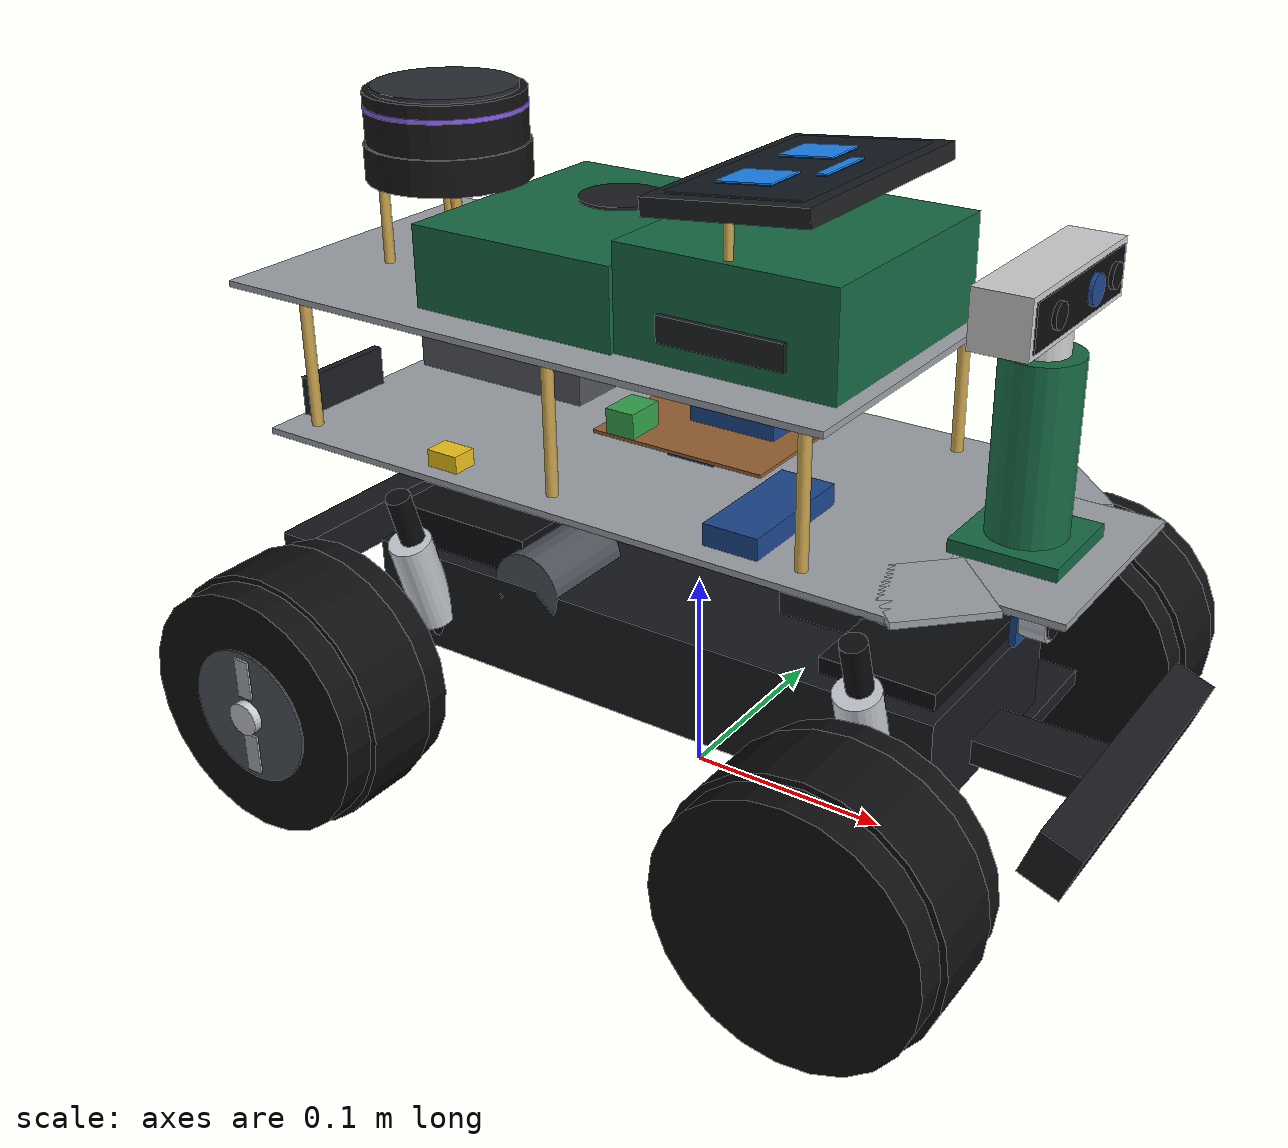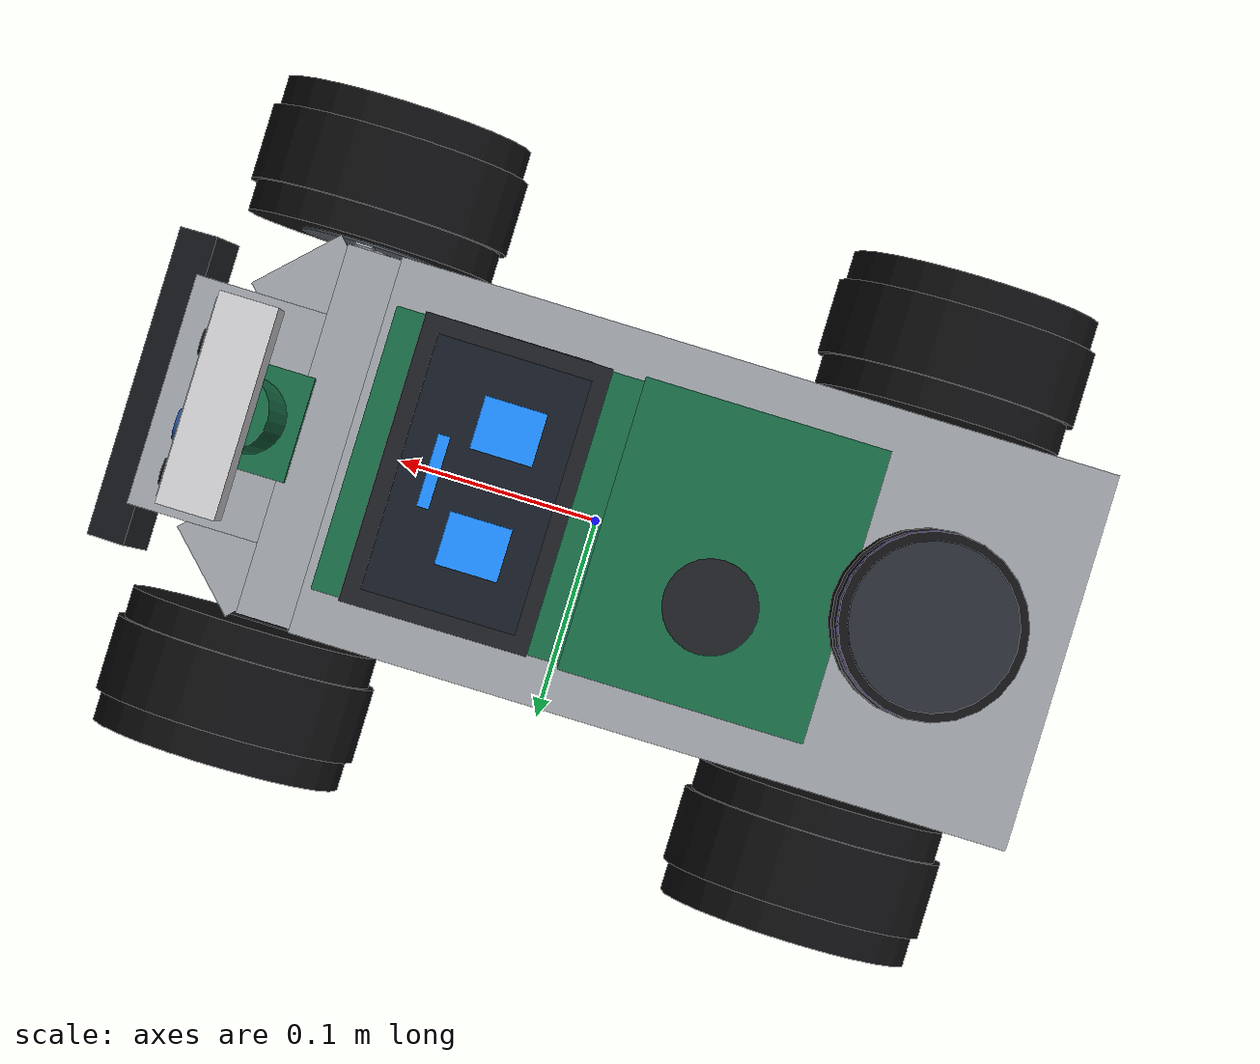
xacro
<?xml version="1.0"?>
<robot name="a2r_bot" xmlns:xacro="http://www.ros.org/wiki/xacro">

  <!-- ══ ARGUMENTS ═══════════════════════════════════════════════════════ -->
  <xacro:arg name="styling"     default="true"/>
  <xacro:arg name="use_meshes"  default="false"/>
  <xacro:arg name="lidar"       default="rplidar"/>
  <xacro:arg name="use_gazebo"  default="false"/>

  <xacro:property name="styling"    value="$(arg styling)"/>
  <xacro:property name="use_meshes" value="$(arg use_meshes)"/>

  <!-- ══ MODULES ═════════════════════════════════════════════════════════ -->
  <xacro:include filename="$(find a2r_bot_description)/urdf/common.xacro"/>
  <xacro:include filename="$(find a2r_bot_description)/urdf/chassis.xacro"/>
  <xacro:include filename="$(find a2r_bot_description)/urdf/wheels.xacro"/>
  <xacro:include filename="$(find a2r_bot_description)/urdf/electronics.xacro"/>
  <xacro:include filename="$(find a2r_bot_description)/urdf/sensors.xacro"/>

  <!-- ══ ASSEMBLY ════════════════════════════════════════════════════════ -->
  <xacro:a2r_chassis      styling="${styling}"/>
  <xacro:a2r_running_gear styling="${styling}"/>
  <xacro:a2r_electronics  styling="${styling}"/>
  <xacro:a2r_sensors      parent_deck_top="top_deck"
                          parent_deck_base="base_deck"
                          styling="${styling}"/>

  <xacro:if value="${use_meshes}">
    <link name="body_shell">
      <visual>
        <origin xyz="0 0 0" rpy="0 0 0"/>
        <geometry>
          <mesh filename="package://a2r_bot_description/meshes/body.dae" scale="1 1 1"/>
        </geometry>
      </visual>
      <xacro:null_inertial/>
    </link>
    <joint name="body_shell_joint" type="fixed">
      <parent link="base_link"/>
      <child  link="body_shell"/>
      <origin xyz="0 0 0.03"/>
    </joint>
  </xacro:if>

  <!-- ══ OPTIONAL GAZEBO / ros2_control ══════════════════════════════════ -->
  <xacro:if value="$(arg use_gazebo)">
    <xacro:include filename="$(find a2r_bot_description)/urdf/a2r_bot.gazebo.xacro"/>
    <xacro:a2r_gazebo/>
  </xacro:if>

</robot>

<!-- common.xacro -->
<robot xmlns:xacro="http://www.ros.org/wiki/xacro">

  <!-- MEASURED Sep 2026 (see docs/KINEMATICS.md). 400 mm tyre-to-tyre minus one
       120 mm tyre diameter puts the axles 280 mm apart. -->
  <xacro:property name="wheelbase"        value="0.280"/>   <!-- front↔rear axle -->
  <xacro:property name="track"            value="0.250"/>   <!-- left↔right wheel -->
  <xacro:property name="wheel_radius"     value="0.060"/>   <!-- Ø 120 mm measured -->
  <xacro:property name="wheel_width"      value="0.065"/>
  <xacro:property name="rim_radius"       value="0.033"/>
  <xacro:property name="chassis_len"      value="0.400"/>
  <xacro:property name="chassis_wid"      value="0.310"/>
  <xacro:property name="chassis_hgt"      value="0.060"/>
  <xacro:property name="chassis_z"        value="0.090"/>   <!-- base_link above ground (axle 0.060 + 0.030) -->
  <xacro:property name="max_steer_rad"    value="0.5236"/>

  <!-- Derived -->
  <xacro:property name="half_wb"          value="${wheelbase/2}"/>
  <xacro:property name="half_track"       value="${track/2}"/>
  <xacro:property name="wheel_z"          value="${wheel_radius - chassis_z}"/>

  <xacro:property name="deck_thk"          value="0.003"/>
  <xacro:property name="lower_deck_top_gz" value="0.165"/>
  <xacro:property name="lower_deck_rear_x" value="-0.185"/>
  <xacro:property name="lower_deck_front_x" value="0.140"/>  <!-- nose starts here -->
  <xacro:property name="lower_deck_nose_x" value="0.200"/>   <!-- nose tip         -->
  <xacro:property name="lower_deck_wid"    value="0.170"/>
  <xacro:property name="deck_gap"          value="0.068"/>   <!-- lower→upper, brass -->
  <xacro:property name="upper_deck_rear_x" value="-0.205"/>
  <xacro:property name="upper_deck_front_x" value="0.110"/>
  <xacro:property name="upper_deck_wid"    value="0.165"/>
  <xacro:property name="standoff_r"        value="0.0028"/>

  <!-- Derived (do not edit) -->
  <xacro:property name="base_deck_z"  value="${lower_deck_top_gz - deck_thk/2 - chassis_z}"/>
  <xacro:property name="top_deck_z"   value="${deck_gap}"/>
  <xacro:property name="lower_len"    value="${lower_deck_front_x - lower_deck_rear_x}"/>
  <xacro:property name="lower_cx"     value="${(lower_deck_front_x + lower_deck_rear_x)/2}"/>
  <xacro:property name="upper_len"    value="${upper_deck_front_x - upper_deck_rear_x}"/>
  <xacro:property name="upper_cx"     value="${(upper_deck_front_x + upper_deck_rear_x)/2}"/>
  <!-- kept for anything that still reads the old names -->
  <xacro:property name="deck_len"     value="${upper_len}"/>
  <xacro:property name="deck_wid"     value="${upper_deck_wid}"/>
  <xacro:property name="standoff_h"   value="${deck_gap - deck_thk}"/>

  <xacro:property name="lidar_x"          value="-0.140"/>  <!-- base_link frame -->
  <xacro:property name="lidar_y"          value="0.001"/>   <!-- sheet: 55 mm right vs 53 mm left gap -->
  <xacro:property name="lidar_yaw"        value="0.000"/>
  <!-- RPLIDAR A2M12 (Slamtec, driven by sllidar_ros2): Ø76 mm, ~41 mm tall,
       fixed base + spinning head with the light ring -->
  <xacro:property name="lidar_radius"     value="0.038"/>
  <xacro:property name="lidar_base_h"     value="0.017"/>
  <xacro:property name="lidar_head_h"     value="0.024"/>
  <xacro:property name="lidar_height"     value="${lidar_base_h + lidar_head_h}"/>
  <xacro:property name="lidar_standoff_h" value="0.040"/>   <!-- 4 × brass -->
  <!-- lidar_link sits on the scan plane = middle of the spinning head -->
  <xacro:property name="lidar_optical_z"  value="${lidar_base_h + lidar_head_h/2}"/>

  <xacro:property name="imu_x"            value="0.000"/>   <!-- GY-91, lower deck -->
  <xacro:property name="imu_y"            value="0.000"/>

  <!-- RealSense D435 on the green printed pillar at the nose of the lower deck -->
  <xacro:property name="cam_x"            value="0.160"/>
  <xacro:property name="cam_y"            value="0.000"/>
  <xacro:property name="cam_pillar_h"     value="0.078"/>
  <xacro:property name="cam_pillar_r"     value="0.0175"/>
  <xacro:property name="cam_clamp_h"      value="0.012"/>

  <xacro:property name="us_front_x"       value="0.180"/>
  <xacro:property name="us_rear_x"        value="-0.205"/>
  <xacro:property name="us_z"             value="0.050"/>   <!-- rel. base_link   -->
  <xacro:property name="us_radius"        value="0.008"/>
  <xacro:property name="us_length"        value="0.012"/>

  <material name="body_black">   <color rgba="0.086 0.094 0.110 1.0"/></material>
  <material name="body_shadow">  <color rgba="0.043 0.047 0.059 1.0"/></material>
  <material name="body_highlight"><color rgba="0.161 0.176 0.204 1.0"/></material>
  <material name="glass">        <color rgba="0.118 0.153 0.196 0.72"/></material>
  <material name="chrome">       <color rgba="0.780 0.800 0.827 1.0"/></material>
  <material name="gunmetal">     <color rgba="0.298 0.322 0.353 1.0"/></material>
  <material name="tyre">         <color rgba="0.055 0.055 0.063 1.0"/></material>
  <material name="rim_silver">   <color rgba="0.663 0.686 0.714 1.0"/></material>
  <material name="caliper_red">  <color rgba="0.769 0.114 0.137 1.0"/></material>
  <material name="light_white">  <color rgba="0.925 0.961 1.000 1.0"/></material>
  <material name="light_red">    <color rgba="0.937 0.137 0.169 1.0"/></material>
  <material name="light_amber">  <color rgba="1.000 0.596 0.102 1.0"/></material>
  <material name="pcb_green">    <color rgba="0.078 0.396 0.267 1.0"/></material>
  <material name="pcb_blue">     <color rgba="0.106 0.278 0.561 1.0"/></material>
  <material name="pcb_black">    <color rgba="0.110 0.118 0.133 1.0"/></material>
  <material name="lipo_orange">  <color rgba="0.878 0.400 0.086 1.0"/></material>
  <material name="screen_cyan">  <color rgba="0.118 0.549 1.000 1.0"/></material>
  <material name="sensor_grey">  <color rgba="0.451 0.471 0.502 1.0"/></material>
  <material name="lidar_blue">   <color rgba="0.161 0.353 0.706 1.0"/></material>
  <material name="aluminium">    <color rgba="0.620 0.640 0.660 1.0"/></material>
  <material name="brass">        <color rgba="0.800 0.650 0.300 1.0"/></material>
  <material name="print_green">  <color rgba="0.090 0.420 0.270 1.0"/></material>
  <material name="rs_silver">    <color rgba="0.820 0.820 0.830 1.0"/></material>
  <material name="lidar_black">  <color rgba="0.070 0.070 0.080 1.0"/></material>
  <material name="lidar_glow">   <color rgba="0.520 0.360 0.950 1.0"/></material>
  <material name="pcb_brown">    <color rgba="0.600 0.380 0.200 1.0"/></material>
  <material name="terminal_green"><color rgba="0.200 0.650 0.300 1.0"/></material>
  <material name="battery_grey"> <color rgba="0.330 0.340 0.360 1.0"/></material>
  <material name="xt60_yellow">  <color rgba="0.950 0.780 0.100 1.0"/></material>
  <material name="copper">       <color rgba="0.722 0.451 0.200 1.0"/></material>

  <xacro:macro name="null_inertial">
    <inertial>
      <mass value="0.001"/>
      <inertia ixx="1e-7" ixy="0" ixz="0" iyy="1e-7" iyz="0" izz="1e-7"/>
    </inertial>
  </xacro:macro>

  <xacro:macro name="box_inertial" params="mass x y z *origin">
    <inertial>
      <xacro:insert_block name="origin"/>
      <mass value="${mass}"/>
      <inertia
        ixx="${mass*(y*y + z*z)/12.0}" ixy="0.0" ixz="0.0"
        iyy="${mass*(x*x + z*z)/12.0}" iyz="0.0"
        izz="${mass*(x*x + y*y)/12.0}"/>
    </inertial>
  </xacro:macro>

  <xacro:macro name="cylinder_inertial" params="mass radius length *origin">
    <inertial>
      <xacro:insert_block name="origin"/>
      <mass value="${mass}"/>
      <inertia
        ixx="${mass*(3.0*radius*radius + length*length)/12.0}" ixy="0.0" ixz="0.0"
        iyy="${mass*(3.0*radius*radius + length*length)/12.0}" iyz="0.0"
        izz="${mass*radius*radius/2.0}"/>
    </inertial>
  </xacro:macro>

  <!-- Decorative box: visual only, no collision, negligible inertia.
       Used for the ~40 styling panels so they cost the planner nothing.     -->
  <xacro:macro name="deco_box" params="name parent x:=0 y:=0 z:=0 roll:=0 pitch:=0 yaw:=0
                                       sx sy sz material">
    <link name="${name}">
      <visual>
        <geometry><box size="${sx} ${sy} ${sz}"/></geometry>
        <material name="${material}"/>
      </visual>
      <xacro:null_inertial/>
    </link>
    <joint name="${name}_joint" type="fixed">
      <parent link="${parent}"/>
      <child  link="${name}"/>
      <origin xyz="${x} ${y} ${z}" rpy="${roll} ${pitch} ${yaw}"/>
    </joint>
  </xacro:macro>

  <xacro:macro name="deco_cyl" params="name parent x:=0 y:=0 z:=0 roll:=0 pitch:=0 yaw:=0
                                       radius length material">
    <link name="${name}">
      <visual>
        <geometry><cylinder radius="${radius}" length="${length}"/></geometry>
        <material name="${material}"/>
      </visual>
      <xacro:null_inertial/>
    </link>
    <joint name="${name}_joint" type="fixed">
      <parent link="${parent}"/>
      <child  link="${name}"/>
      <origin xyz="${x} ${y} ${z}" rpy="${roll} ${pitch} ${yaw}"/>
    </joint>
  </xacro:macro>

</robot>

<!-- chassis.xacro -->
<robot xmlns:xacro="http://www.ros.org/wiki/xacro">

  <xacro:macro name="a2r_chassis" params="styling:=true">

    <link name="base_footprint"/>

    <joint name="base_footprint_joint" type="fixed">
      <parent link="base_footprint"/>
      <child  link="base_link"/>
      <origin xyz="0 0 ${chassis_z}" rpy="0 0 0"/>
    </joint>

    <!-- ══ base_link: visual = RC tub, collision = planner footprint ═════ -->
    <link name="base_link">
      <visual>
        <origin xyz="0 0 -0.012"/>
        <geometry><box size="0.300 0.110 0.050"/></geometry>
        <material name="body_black"/>
      </visual>
      <collision>
        <geometry><box size="${chassis_len} ${chassis_wid} ${chassis_hgt}"/></geometry>
      </collision>
      <xacro:box_inertial mass="2.4" x="${chassis_len}" y="${chassis_wid}" z="${chassis_hgt}">
        <origin xyz="0 0 0" rpy="0 0 0"/>
      </xacro:box_inertial>
    </link>

    <xacro:if value="${styling}">

      <!-- ── Rear gearbox + motor (RWD) ──────────────────────────────── -->
      <xacro:deco_box name="gearbox" parent="base_link" x="-0.105" y="0" z="0.002"
                      sx="0.075" sy="0.095" sz="0.060" material="body_shadow"/>
      <xacro:deco_cyl name="motor" parent="base_link" x="-0.060" y="-0.030" z="0.012"
                      roll="1.5708" radius="0.018" length="0.050" material="gunmetal"/>

      <!-- ── Front bulkhead + steering servo ──────────────────────────── -->
      <xacro:deco_box name="front_bulkhead" parent="base_link" x="0.118" y="0" z="-0.004"
                      sx="0.055" sy="0.090" sz="0.050" material="body_shadow"/>
      <xacro:deco_box name="steer_servo" parent="base_link" x="0.070" y="0" z="0.018"
                      sx="0.040" sy="0.020" sz="0.038" material="pcb_black"/>

      <!-- ── Bumpers ──────────────────────────────────────────────────── -->
      <xacro:deco_box name="front_bumper" parent="base_link" x="0.212" y="0" z="-0.018"
                      pitch="0.35" sx="0.020" sy="0.150" sz="0.024" material="body_black"/>
      <xacro:deco_box name="front_bumper_arm" parent="base_link" x="0.175" y="0" z="-0.022"
                      sx="0.060" sy="0.030" sz="0.012" material="body_black"/>
      <xacro:deco_box name="rear_bumper" parent="base_link" x="-0.205" y="0" z="-0.010"
                      sx="0.018" sy="0.120" sz="0.022" material="body_black"/>

      <!-- ── Suspension arms (lower wishbones) ────────────────────────── -->
      <xacro:deco_box name="arm_fl" parent="base_link" x="${ half_wb}" y="0.068"  z="${wheel_z - 0.008}"
                      sx="0.030" sy="0.070" sz="0.008" material="body_black"/>
      <xacro:deco_box name="arm_fr" parent="base_link" x="${ half_wb}" y="-0.068" z="${wheel_z - 0.008}"
                      sx="0.030" sy="0.070" sz="0.008" material="body_black"/>
      <xacro:deco_box name="arm_rl" parent="base_link" x="${-half_wb}" y="0.068"  z="${wheel_z - 0.008}"
                      sx="0.030" sy="0.070" sz="0.008" material="body_black"/>
      <xacro:deco_box name="arm_rr" parent="base_link" x="${-half_wb}" y="-0.068" z="${wheel_z - 0.008}"
                      sx="0.030" sy="0.070" sz="0.008" material="body_black"/>

      <!-- ── Coil-over shocks: chrome spring over a black body, raked out ─ -->
      <xacro:macro name="a2r_shock" params="name x y lean">
        <xacro:deco_cyl name="${name}_body" parent="base_link" x="${x}" y="${y}" z="0.012"
                        roll="${lean}" radius="0.006" length="0.085" material="body_shadow"/>
        <xacro:deco_cyl name="${name}_spring" parent="base_link" x="${x}" y="${y}" z="0.004"
                        roll="${lean}" radius="0.0105" length="0.048" material="chrome"/>
      </xacro:macro>
      <xacro:a2r_shock name="shock_fl" x="${ half_wb - 0.018}" y="0.062"  lean="-0.30"/>
      <xacro:a2r_shock name="shock_fr" x="${ half_wb - 0.018}" y="-0.062" lean="0.30"/>
      <xacro:a2r_shock name="shock_rl" x="${-half_wb + 0.022}" y="0.062"  lean="-0.30"/>
      <xacro:a2r_shock name="shock_rr" x="${-half_wb + 0.022}" y="-0.062" lean="0.30"/>

      <!-- ── Posts that carry the lower deck on the tub ───────────────── -->
      <xacro:deco_cyl name="deck_post_f" parent="base_link" x="0.100" y="0" z="0.045"
                      radius="0.006" length="0.050" material="body_shadow"/>
      <xacro:deco_cyl name="deck_post_r" parent="base_link" x="-0.150" y="0" z="0.050"
                      radius="0.006" length="0.040" material="body_shadow"/>

    </xacro:if>
  </xacro:macro>

</robot>

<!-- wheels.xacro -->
<robot xmlns:xacro="http://www.ros.org/wiki/xacro">

  <!-- ══ One wheel: tyre + tread + dish rim + hub ══════════════════════ -->
  <xacro:macro name="a2r_wheel" params="prefix parent x y styling:=true">

    <link name="${prefix}_wheel">
      <!-- Tyre -->
      <visual>
        <origin rpy="1.5708 0 0"/>
        <geometry><cylinder radius="${wheel_radius}" length="${wheel_width}"/></geometry>
        <material name="tyre"/>
      </visual>
      <collision>
        <origin rpy="1.5708 0 0"/>
        <geometry><cylinder radius="${wheel_radius}" length="${wheel_width}"/></geometry>
      </collision>
      <xacro:cylinder_inertial mass="0.18" radius="${wheel_radius}" length="${wheel_width}">
        <origin rpy="1.5708 0 0"/>
      </xacro:cylinder_inertial>
    </link>

    <joint name="${prefix}_wheel_joint" type="continuous">
      <parent link="${parent}"/>
      <child  link="${prefix}_wheel"/>
      <origin xyz="${x} ${y} ${0 if parent != 'base_link' else wheel_z}"/>
      <axis xyz="0 1 0"/>
      <dynamics damping="0.02" friction="0.01"/>
    </joint>

    <xacro:if value="${styling}">
      <!-- Chunky knobbly monster-truck tyre on a dark dish rim. -->
      <xacro:property name="side" value="${1 if y >= 0 else -1}"/>

      <!-- Tread band: slightly bigger radius, narrower, reads as lugs -->
      <xacro:deco_cyl name="${prefix}_tread" parent="${prefix}_wheel"
                      x="0" y="0" z="0" roll="1.5708"
                      radius="${wheel_radius + 0.003}" length="${wheel_width*0.55}" material="tyre"/>

      <!-- Dish rim, outboard face -->
      <xacro:deco_cyl name="${prefix}_rim" parent="${prefix}_wheel"
                      x="0" y="${side*(wheel_width/2 - 0.012)}" z="0" roll="1.5708"
                      radius="${rim_radius}" length="0.026" material="gunmetal"/>

      <!-- Two light marks on the rim: they spin with the wheel, the
           cheapest cue in RViz that the drive channel is alive. -->
      <xacro:deco_box name="${prefix}_rim_mark_a" parent="${prefix}_wheel"
                      x="0" y="${side*(wheel_width/2 + 0.001)}" z="${rim_radius*0.6}"
                      sx="0.008" sy="0.002" sz="${rim_radius*0.6}" material="rim_silver"/>
      <xacro:deco_box name="${prefix}_rim_mark_b" parent="${prefix}_wheel"
                      x="0" y="${side*(wheel_width/2 + 0.001)}" z="${-rim_radius*0.6}"
                      sx="0.008" sy="0.002" sz="${rim_radius*0.6}" material="rim_silver"/>

      <!-- Hex hub nut -->
      <xacro:deco_cyl name="${prefix}_hub" parent="${prefix}_wheel"
                      x="0" y="${side*(wheel_width/2 + 0.002)}" z="0" roll="1.5708"
                      radius="0.008" length="0.006" material="chrome"/>
    </xacro:if>
  </xacro:macro>

  <!-- ══ Steering knuckle: the revolute joint the servo actually drives ══ -->
  <xacro:macro name="a2r_knuckle" params="prefix x y">
    <link name="${prefix}_steer_link">
      <visual>
        <geometry><box size="0.016 0.020 0.030"/></geometry>
        <material name="gunmetal"/>
      </visual>
      <xacro:box_inertial mass="0.04" x="0.016" y="0.020" z="0.030">
        <origin xyz="0 0 0"/>
      </xacro:box_inertial>
    </link>

    <joint name="${prefix}_steer_joint" type="revolute">
      <parent link="base_link"/>
      <child  link="${prefix}_steer_link"/>
      <origin xyz="${x} ${y} ${wheel_z}"/>
      <axis xyz="0 0 1"/>
      <limit lower="${-max_steer_rad}" upper="${max_steer_rad}"
             effort="6.0" velocity="8.0"/>
      <dynamics damping="0.05" friction="0.02"/>
    </joint>
  </xacro:macro>

  <!-- ══ Full running gear ══════════════════════════════════════════════ -->
  <xacro:macro name="a2r_running_gear" params="styling:=true">

    <!-- FRONT: knuckle then wheel (wheel hangs off the knuckle → it steers) -->
    <xacro:a2r_knuckle prefix="front_left"  x="${ half_wb}" y="${ half_track}"/>
    <xacro:a2r_knuckle prefix="front_right" x="${ half_wb}" y="${-half_track}"/>
    <xacro:a2r_wheel prefix="front_left"  parent="front_left_steer_link"
                     x="0" y="0" styling="${styling}"/>
    <xacro:a2r_wheel prefix="front_right" parent="front_right_steer_link"
                     x="0" y="0" styling="${styling}"/>

    <!-- REAR: driven axle, no steering -->
    <xacro:a2r_wheel prefix="rear_left"  parent="base_link"
                     x="${-half_wb}" y="${ half_track}" styling="${styling}"/>
    <xacro:a2r_wheel prefix="rear_right" parent="base_link"
                     x="${-half_wb}" y="${-half_track}" styling="${styling}"/>

    <xacro:if value="${styling}">
      <!-- Rear axle tube + drive shaft, hinting at the single-motor RWD layout -->
      <xacro:deco_cyl name="rear_axle" parent="base_link"
                      x="${-half_wb}" y="0" z="${wheel_z}" roll="1.5708"
                      radius="0.006" length="${track - wheel_width}" material="chrome"/>
      <xacro:deco_cyl name="drive_shaft" parent="base_link"
                      x="${-half_wb/2}" y="0" z="${wheel_z}" pitch="1.5708"
                      radius="0.005" length="${half_wb}" material="gunmetal"/>
      <!-- Steering track rod, spanning the two knuckles -->
      <xacro:deco_cyl name="track_rod" parent="base_link"
                      x="${half_wb - 0.020}" y="0" z="${wheel_z}" roll="1.5708"
                      radius="0.004" length="${track - 0.05}" material="chrome"/>
    </xacro:if>
  </xacro:macro>

</robot>

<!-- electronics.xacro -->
<robot xmlns:xacro="http://www.ros.org/wiki/xacro">

  <xacro:macro name="a2r_electronics" params="styling:=true">

    <!-- ══ LOWER DECK ════════════════════════════════════════════════════ -->
    <link name="base_deck">
      <visual>
        <origin xyz="${lower_cx} 0 0"/>
        <geometry><box size="${lower_len} ${lower_deck_wid} ${deck_thk}"/></geometry>
        <material name="aluminium"/>
      </visual>
      <xacro:box_inertial mass="0.15" x="${lower_len}" y="${lower_deck_wid}" z="${deck_thk}">
        <origin xyz="${lower_cx} 0 0"/>
      </xacro:box_inertial>
    </link>
    <joint name="base_deck_joint" type="fixed">
      <parent link="base_link"/>
      <child  link="base_deck"/>
      <origin xyz="0 0 ${base_deck_z}"/>
    </joint>

    <!-- ══ UPPER DECK ════════════════════════════════════════════════════ -->
    <link name="top_deck">
      <visual>
        <origin xyz="${upper_cx} 0 0"/>
        <geometry><box size="${upper_len} ${upper_deck_wid} ${deck_thk}"/></geometry>
        <material name="aluminium"/>
      </visual>
      <xacro:box_inertial mass="0.13" x="${upper_len}" y="${upper_deck_wid}" z="${deck_thk}">
        <origin xyz="${upper_cx} 0 0"/>
      </xacro:box_inertial>
    </link>
    <joint name="top_deck_joint" type="fixed">
      <parent link="base_deck"/>
      <child  link="top_deck"/>
      <origin xyz="0 0 ${top_deck_z}"/>
    </joint>

    <xacro:if value="${styling}">

      <!-- ── Octagonal nose of the lower deck ─────────────────────────── -->
      <xacro:property name="nose_len" value="${lower_deck_nose_x - lower_deck_front_x}"/>
      <xacro:deco_box name="lower_nose" parent="base_deck"
                      x="${lower_deck_front_x + nose_len/2}" y="0" z="0"
                      sx="${nose_len}" sy="${lower_deck_wid*0.62}" sz="${deck_thk}" material="aluminium"/>
      <xacro:deco_box name="lower_nose_cl" parent="base_deck"
                      x="${lower_deck_front_x + 0.004}" y="${lower_deck_wid*0.33}" z="0" yaw="0.785"
                      sx="0.045" sy="0.045" sz="${deck_thk}" material="aluminium"/>
      <xacro:deco_box name="lower_nose_cr" parent="base_deck"
                      x="${lower_deck_front_x + 0.004}" y="${-lower_deck_wid*0.33}" z="0" yaw="0.785"
                      sx="0.045" sy="0.045" sz="${deck_thk}" material="aluminium"/>

      <!-- ── Brass standoffs, lower → upper deck ──────────────────────── -->
      <xacro:property name="so_z" value="${deck_gap/2}"/>
      <xacro:deco_cyl name="standoff_fl" parent="base_deck" x="0.095"  y="0.070"  z="${so_z}"
                      radius="${standoff_r}" length="${standoff_h}" material="brass"/>
      <xacro:deco_cyl name="standoff_fr" parent="base_deck" x="0.095"  y="-0.070" z="${so_z}"
                      radius="${standoff_r}" length="${standoff_h}" material="brass"/>
      <xacro:deco_cyl name="standoff_rl" parent="base_deck" x="-0.170" y="0.070"  z="${so_z}"
                      radius="${standoff_r}" length="${standoff_h}" material="brass"/>
      <xacro:deco_cyl name="standoff_rr" parent="base_deck" x="-0.170" y="-0.070" z="${so_z}"
                      radius="${standoff_r}" length="${standoff_h}" material="brass"/>
      <xacro:deco_cyl name="standoff_ml" parent="base_deck" x="-0.030" y="0.070"  z="${so_z}"
                      radius="${standoff_r}" length="${standoff_h}" material="brass"/>
      <xacro:deco_cyl name="standoff_mr" parent="base_deck" x="-0.030" y="-0.070" z="${so_z}"
                      radius="${standoff_r}" length="${standoff_h}" material="brass"/>

      <!-- ── LOWER DECK components ────────────────────────────────────── -->
      <!-- Perfboard with Arduino Nano ESP32 + screw terminals -->
      <xacro:deco_box name="perfboard" parent="base_deck" x="0.000" y="0.015" z="0.010"
                      sx="0.090" sy="0.070" sz="0.0016" material="pcb_brown"/>
      <xacro:deco_box name="arduino_nano" parent="base_deck" x="0.010" y="0.020" z="0.016"
                      sx="0.045" sy="0.018" sz="0.008" material="pcb_blue"/>
      <xacro:deco_box name="terminals_a" parent="base_deck" x="-0.030" y="0.040" z="0.017"
                      sx="0.015" sy="0.020" sz="0.012" material="terminal_green"/>
      <xacro:deco_box name="terminals_b" parent="base_deck" x="-0.030" y="-0.010" z="0.017"
                      sx="0.015" sy="0.020" sz="0.012" material="terminal_green"/>
      <!-- PCA9685 16-ch PWM -->
      <xacro:deco_box name="pca9685" parent="base_deck" x="0.065" y="-0.045" z="0.008"
                      sx="0.026" sy="0.062" sz="0.010" material="pcb_blue"/>
      <!-- Grey battery pack, rear-left, + its XT60 -->
      <xacro:deco_box name="battery_pack" parent="base_deck" x="-0.130" y="0.040" z="${deck_thk/2 + 0.020}"
                      sx="0.100" sy="0.048" sz="0.040" material="battery_grey"/>
      <xacro:deco_box name="battery_label" parent="base_deck" x="-0.130" y="0.0645" z="${deck_thk/2 + 0.020}"
                      sx="0.030" sy="0.001" sz="0.024" material="light_white"/>
      <xacro:deco_box name="xt60" parent="base_deck" x="-0.080" y="-0.078" z="0.010"
                      sx="0.016" sy="0.012" sz="0.008" material="xt60_yellow"/>

      <!-- ── UPPER DECK components ────────────────────────────────────── -->
      <!-- Rear green case (Jetson, fan grille on top) -->
      <xacro:deco_box name="jetson_case" parent="top_deck" x="-0.055" y="0" z="${deck_thk/2 + 0.019}"
                      sx="0.105" sy="0.125" sz="0.038" material="print_green"/>
      <xacro:deco_cyl name="jetson_fan" parent="top_deck" x="-0.055" y="0.020" z="${deck_thk/2 + 0.0385}"
                      radius="0.020" length="0.002" material="pcb_black"/>
      <!-- Front green case (Pi 4, ports on the side) -->
      <xacro:deco_box name="rpi_case" parent="top_deck" x="0.050" y="0" z="${deck_thk/2 + 0.024}"
                      sx="0.105" sy="0.120" sz="0.048" material="print_green"/>
      <xacro:deco_box name="rpi_ports" parent="top_deck" x="0.050" y="-0.061" z="${deck_thk/2 + 0.016}"
                      sx="0.060" sy="0.003" sz="0.012" material="pcb_black"/>
      <!-- Brass posts that lift the touchscreen off the front case -->
      <xacro:deco_cyl name="screen_post_l" parent="top_deck" x="0.050" y="0.055"  z="${deck_thk/2 + 0.056}"
                      radius="0.002" length="0.016" material="brass"/>
      <xacro:deco_cyl name="screen_post_r" parent="top_deck" x="0.050" y="-0.055" z="${deck_thk/2 + 0.056}"
                      radius="0.002" length="0.016" material="brass"/>
    </xacro:if>

    <link name="display_link">
      <visual>
        <geometry><box size="0.004 0.050 0.019"/></geometry>
        <material name="pcb_black"/>
      </visual>
      <xacro:null_inertial/>
    </link>
    <joint name="display_joint" type="fixed">
      <parent link="base_deck"/>
      <child  link="display_link"/>
      <origin xyz="${lower_deck_rear_x + 0.004} -0.040 ${deck_thk/2 + 0.010}" rpy="0 0 ${pi}"/>
    </joint>

    <link name="face_screen_link">
      <visual>
        <geometry><box size="0.008 0.120 0.078"/></geometry>
        <material name="pcb_black"/>
      </visual>
      <xacro:box_inertial mass="0.11" x="0.008" y="0.120" z="0.078">
        <origin xyz="0 0 0"/>
      </xacro:box_inertial>
    </link>
    <joint name="face_screen_joint" type="fixed">
      <parent link="top_deck"/>
      <child  link="face_screen_link"/>
      <origin xyz="0.050 0 ${deck_thk/2 + 0.068}" rpy="0 -1.671 0"/>
    </joint>

    <xacro:if value="${styling}">
      <xacro:deco_box name="face_panel" parent="face_screen_link" x="0.0045"
                      sx="0.001" sy="0.106" sz="0.064" material="glass"/>
      <xacro:deco_box name="face_eye_l" parent="face_screen_link" x="0.0052" y="0.024" z="0.006"
                      sx="0.001" sy="0.022" sz="0.026" material="screen_cyan"/>
      <xacro:deco_box name="face_eye_r" parent="face_screen_link" x="0.0052" y="-0.024" z="0.006"
                      sx="0.001" sy="0.022" sz="0.026" material="screen_cyan"/>
      <xacro:deco_box name="face_mouth" parent="face_screen_link" x="0.0052" y="0" z="-0.018"
                      sx="0.001" sy="0.030" sz="0.005" material="screen_cyan"/>
    </xacro:if>

  </xacro:macro>
</robot>

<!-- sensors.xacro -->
<robot xmlns:xacro="http://www.ros.org/wiki/xacro">

  <xacro:macro name="a2r_sensors" params="parent_deck_top parent_deck_base styling:=true">

    <link name="lidar_link">
      <visual>
        <geometry><cylinder radius="${lidar_radius}" length="${lidar_head_h}"/></geometry>
        <material name="lidar_black"/>
      </visual>
      <collision>
        <origin xyz="0 0 ${lidar_head_h/2 - lidar_height/2}"/>
        <geometry><cylinder radius="${lidar_radius}" length="${lidar_height}"/></geometry>
      </collision>
      <xacro:cylinder_inertial mass="0.19" radius="${lidar_radius}" length="${lidar_height}">
        <origin xyz="0 0 0"/>
      </xacro:cylinder_inertial>
    </link>
    <joint name="lidar_joint" type="fixed">
      <parent link="${parent_deck_top}"/>
      <child  link="lidar_link"/>
      <origin xyz="${lidar_x} ${lidar_y} ${deck_thk/2 + lidar_standoff_h + lidar_optical_z}"
              rpy="0 0 ${lidar_yaw}"/>
    </joint>

    <xacro:if value="${styling}">
      <!-- Fixed base (slightly wider), purple LED ring, cap -->
      <xacro:deco_cyl name="lidar_base" parent="lidar_link"
                      z="${-lidar_optical_z + lidar_base_h/2}"
                      radius="${lidar_radius*1.03}" length="${lidar_base_h}" material="lidar_black"/>
      <xacro:deco_cyl name="lidar_ring" parent="lidar_link" z="${lidar_head_h*0.20}"
                      radius="${lidar_radius*1.005}" length="0.002" material="lidar_glow"/>
      <xacro:deco_cyl name="lidar_cap" parent="lidar_link" z="${lidar_head_h/2 + 0.001}"
                      radius="${lidar_radius*0.90}" length="0.002" material="body_highlight"/>
      <!-- 4 brass standoffs from the upper deck up to the lidar base -->
      <xacro:property name="lso_z" value="${-lidar_optical_z - lidar_standoff_h/2}"/>
      <xacro:deco_cyl name="lidar_standoff_fl" parent="lidar_link" x="0.022"  y="0.022"  z="${lso_z}"
                      radius="0.0025" length="${lidar_standoff_h}" material="brass"/>
      <xacro:deco_cyl name="lidar_standoff_fr" parent="lidar_link" x="0.022"  y="-0.022" z="${lso_z}"
                      radius="0.0025" length="${lidar_standoff_h}" material="brass"/>
      <xacro:deco_cyl name="lidar_standoff_rl" parent="lidar_link" x="-0.022" y="0.022"  z="${lso_z}"
                      radius="0.0025" length="${lidar_standoff_h}" material="brass"/>
      <xacro:deco_cyl name="lidar_standoff_rr" parent="lidar_link" x="-0.022" y="-0.022" z="${lso_z}"
                      radius="0.0025" length="${lidar_standoff_h}" material="brass"/>
    </xacro:if>

    <link name="imu_link">
      <visual>
        <geometry><box size="0.025 0.015 0.003"/></geometry>
        <material name="pcb_blue"/>
      </visual>
      <xacro:box_inertial mass="0.005" x="0.025" y="0.015" z="0.003">
        <origin xyz="0 0 0"/>
      </xacro:box_inertial>
    </link>
    <joint name="imu_joint" type="fixed">
      <parent link="${parent_deck_base}"/>
      <child  link="imu_link"/>
      <origin xyz="${imu_x} ${imu_y} ${deck_thk/2 + 0.0015}" rpy="0 0 0"/>
    </joint>

    <xacro:property name="cam_z" value="${deck_thk/2 + 0.006 + cam_pillar_h + cam_clamp_h + 0.0125}"/>
    <link name="camera_link">
      <visual>
        <geometry><box size="0.025 0.090 0.025"/></geometry>
        <material name="rs_silver"/>
      </visual>
      <collision>
        <geometry><box size="0.025 0.090 0.025"/></geometry>
      </collision>
      <xacro:box_inertial mass="0.072" x="0.025" y="0.090" z="0.025">
        <origin xyz="0 0 0"/>
      </xacro:box_inertial>
    </link>
    <joint name="camera_joint" type="fixed">
      <parent link="${parent_deck_base}"/>
      <child  link="camera_link"/>
      <origin xyz="${cam_x} ${cam_y} ${cam_z}" rpy="0 0 0"/>
    </joint>

    <!-- REP-103 optical frame: Z forward, X right, Y down. The Jetson's
         tracker publishes owner bearings in THIS frame.                    -->
    <link name="camera_optical_frame"/>
    <joint name="camera_optical_joint" type="fixed">
      <parent link="camera_link"/>
      <child  link="camera_optical_frame"/>
      <origin xyz="0.013 0 0" rpy="${-pi/2} 0 ${-pi/2}"/>
    </joint>

    <xacro:if value="${styling}">
      <!-- Green printed pillar: square foot, round column, silver clamp -->
      <xacro:deco_box name="cam_pillar_foot" parent="${parent_deck_base}" x="${cam_x}" y="${cam_y}"
                      z="${deck_thk/2 + 0.003}" sx="0.048" sy="0.048" sz="0.006" material="print_green"/>
      <xacro:deco_cyl name="cam_pillar" parent="${parent_deck_base}" x="${cam_x}" y="${cam_y}"
                      z="${deck_thk/2 + 0.006 + cam_pillar_h/2}"
                      radius="${cam_pillar_r}" length="${cam_pillar_h}" material="print_green"/>
      <xacro:deco_cyl name="cam_clamp" parent="${parent_deck_base}" x="${cam_x}" y="${cam_y}"
                      z="${deck_thk/2 + 0.006 + cam_pillar_h + cam_clamp_h/2}"
                      radius="0.011" length="${cam_clamp_h}" material="rs_silver"/>
      <xacro:deco_box name="cam_face" parent="camera_link" x="0.0127"
                      sx="0.001" sy="0.084" sz="0.020" material="body_shadow"/>
      <xacro:deco_cyl name="cam_lens_l" parent="camera_link" x="0.0135" y="0.032"
                      pitch="1.5708" radius="0.0055" length="0.003" material="body_shadow"/>
      <xacro:deco_cyl name="cam_lens_c" parent="camera_link" x="0.0135" y="0.012"
                      pitch="1.5708" radius="0.0065" length="0.003" material="pcb_blue"/>
      <xacro:deco_cyl name="cam_lens_r" parent="camera_link" x="0.0135" y="-0.023"
                      pitch="1.5708" radius="0.0055" length="0.003" material="body_shadow"/>
    </xacro:if>

    <link name="ultrasonic_front_link">
      <visual>
        <origin xyz="-0.013 0 0"/>
        <geometry><box size="0.003 0.045 0.020"/></geometry>
        <material name="pcb_blue"/>
      </visual>
      <xacro:box_inertial mass="0.010" x="0.003" y="0.045" z="0.020">
        <origin xyz="-0.013 0 0"/>
      </xacro:box_inertial>
    </link>
    <joint name="ultrasonic_front_joint" type="fixed">
      <parent link="base_link"/>
      <child  link="ultrasonic_front_link"/>
      <origin xyz="${us_front_x} 0 ${us_z}" rpy="0 0 0"/>
    </joint>

    <!-- Rear frame only: no module fitted on the current build. -->
    <link name="ultrasonic_rear_link">
      <xacro:null_inertial/>
    </link>
    <joint name="ultrasonic_rear_joint" type="fixed">
      <parent link="base_link"/>
      <child  link="ultrasonic_rear_link"/>
      <origin xyz="${us_rear_x} 0 ${us_z}" rpy="0 0 ${pi}"/>
    </joint>

    <xacro:if value="${styling}">
      <!-- Twin transducer barrels, faces on the link origin plane -->
      <xacro:deco_cyl name="us_front_barrel_l" parent="ultrasonic_front_link"
                      x="${-us_length/2}" y="0.013" pitch="1.5708"
                      radius="${us_radius}" length="${us_length}" material="rim_silver"/>
      <xacro:deco_cyl name="us_front_barrel_r" parent="ultrasonic_front_link"
                      x="${-us_length/2}" y="-0.013" pitch="1.5708"
                      radius="${us_radius}" length="${us_length}" material="rim_silver"/>
      <xacro:deco_cyl name="us_front_face_l" parent="ultrasonic_front_link"
                      x="0.0005" y="0.013" pitch="1.5708"
                      radius="${us_radius*0.8}" length="0.001" material="body_shadow"/>
      <xacro:deco_cyl name="us_front_face_r" parent="ultrasonic_front_link"
                      x="0.0005" y="-0.013" pitch="1.5708"
                      radius="${us_radius*0.8}" length="0.001" material="body_shadow"/>
    </xacro:if>

  </xacro:macro>
</robot>
